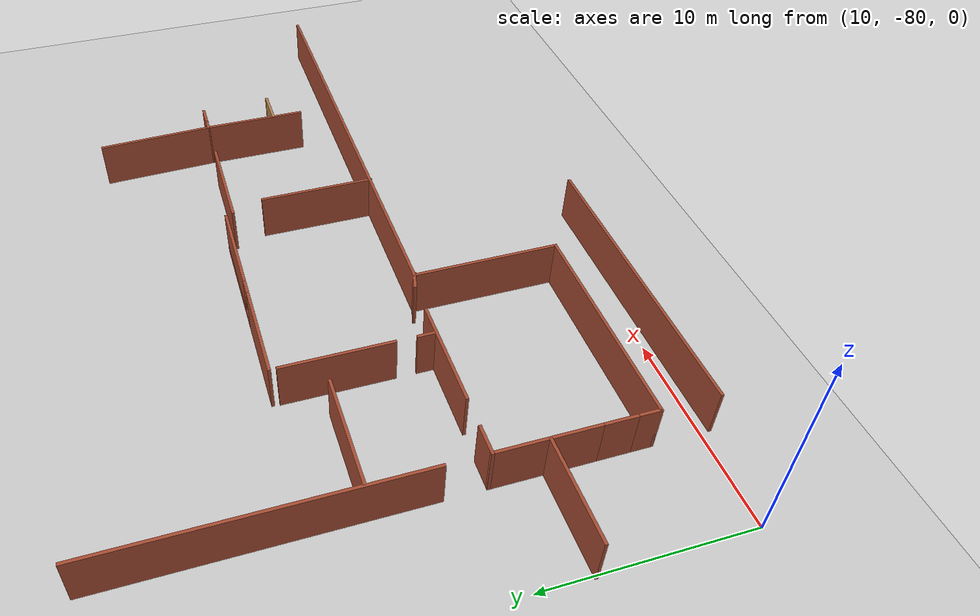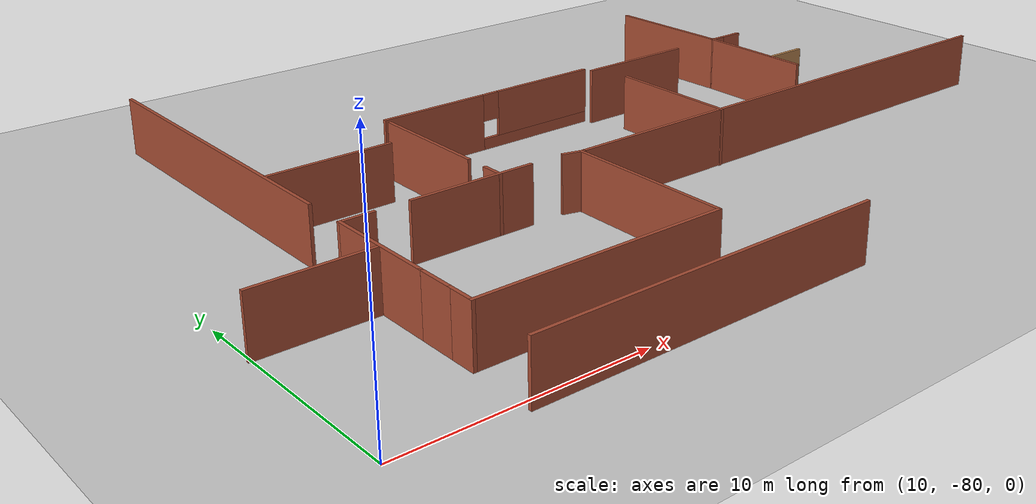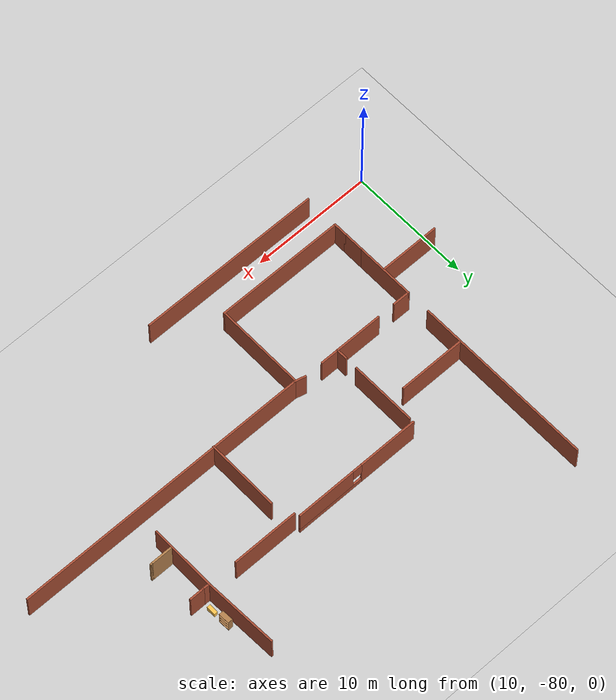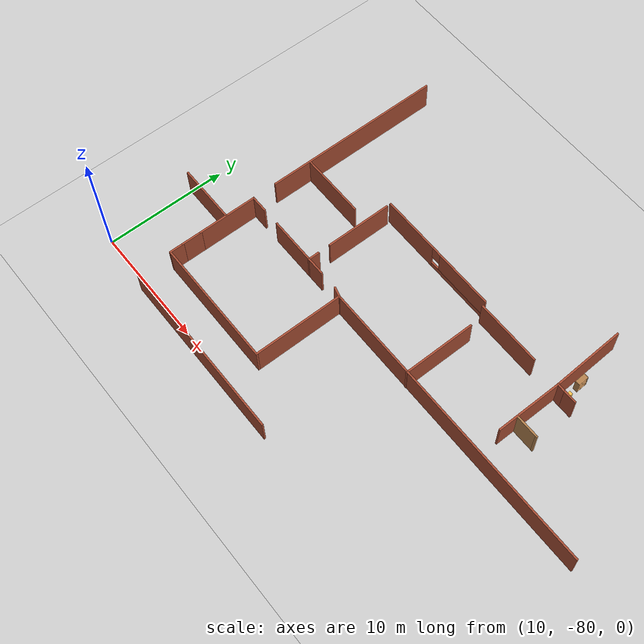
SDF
<sdf version="1.6">
 <world name="default">
  <model name="map_palace_v2_model_1_0">
   <pose>-3.1e-05 -55 0 0 -0 3.14</pose>
   <link name="Wall_10">
    <collision name="Wall_10_Collision">
     <geometry><box><size>7.5 0.15 2.5</size></box></geometry>
     <pose>0 0 1.25 0 -0 0</pose>
    </collision>
    <visual name="Wall_10_Visual">
     <pose>0 0 1.25 0 -0 0</pose>
     <geometry><box><size>7.5 0.15 2.5</size></box></geometry>
     <material>
      <script><uri>file://media/materials/scripts/gazebo.material</uri><name>Gazebo/Bricks</name></script>
      <ambient>1 1 1 1</ambient>
     </material>
     <meta><layer>0</layer></meta>
    </visual>
    <pose>-25.5193 18.9225 0 0 -0 -1.5708</pose>
   </link>
   <link name="Wall_11">
    <collision name="Wall_11_Collision">
     <geometry><box><size>24.75 0.15 2.5</size></box></geometry>
     <pose>0 0 1.25 0 -0 0</pose>
    </collision>
    <visual name="Wall_11_Visual">
     <pose>0 0 1.25 0 -0 0</pose>
     <geometry><box><size>24.75 0.15 2.5</size></box></geometry>
     <material>
      <script><uri>file://media/materials/scripts/gazebo.material</uri><name>Gazebo/Bricks</name></script>
      <ambient>1 1 1 1</ambient>
     </material>
     <meta><layer>0</layer></meta>
    </visual>
    <pose>-37.8193 15.2475 0 0 -0 3.14159</pose>
   </link>
   <link name="Wall_191">
    <collision name="Wall_191_Collision">
     <geometry><box><size>6.09813 0.15 2.5</size></box></geometry>
     <pose>0 0 1.25 0 -0 0</pose>
    </collision>
    <visual name="Wall_191_Visual">
     <pose>0 0 1.25 0 -0 0</pose>
     <geometry><box><size>6.09813 0.15 2.5</size></box></geometry>
     <material>
      <script><uri>file://media/materials/scripts/gazebo.material</uri><name>Gazebo/Bricks</name></script>
      <ambient>1 1 1 1</ambient>
     </material>
     <meta><layer>0</layer></meta>
    </visual>
    <pose>-40.2476 4.77589 0 0 -0 1.61175</pose>
   </link>
   <link name="Wall_196">
    <collision name="Wall_196_Collision">
     <geometry><box><size>5.5 0.15 2.5</size></box></geometry>
     <pose>0 0 1.25 0 -0 0</pose>
    </collision>
    <visual name="Wall_196_Visual">
     <pose>0 0 1.25 0 -0 0</pose>
     <geometry><box><size>5.5 0.15 2.5</size></box></geometry>
     <material>
      <script><uri>file://media/materials/scripts/gazebo.material</uri><name>Gazebo/Bricks</name></script>
      <ambient>1 1 1 1</ambient>
     </material>
     <meta><layer>0</layer></meta>
    </visual>
    <pose>-17.7024 9.73922 0 0 -0 0</pose>
   </link>
   <link name="Wall_200">
    <collision name="Wall_200_Collision">
     <geometry><box><size>5 0.15 2.5</size></box></geometry>
     <pose>0 0 1.25 0 -0 0</pose>
    </collision>
    <visual name="Wall_200_Visual">
     <pose>0 0 1.25 0 -0 0</pose>
     <geometry><box><size>5 0.15 2.5</size></box></geometry>
     <material>
      <script><uri>file://media/materials/scripts/gazebo.material</uri><name>Gazebo/Bricks</name></script>
      <ambient>1 1 1 1</ambient>
     </material>
     <meta><layer>0</layer></meta>
    </visual>
    <pose>-12.4131 17.5809 0 0 -0 0</pose>
   </link>
   <link name="Wall_22">
    <collision name="Wall_22_Collision">
     <geometry><box><size>15 0.15 2.5</size></box></geometry>
     <pose>0 0 1.25 0 -0 0</pose>
    </collision>
    <visual name="Wall_22_Visual">
     <pose>0 0 1.25 0 -0 0</pose>
     <geometry><box><size>15 0.15 2.5</size></box></geometry>
     <material>
      <script><uri>file://media/materials/scripts/gazebo.material</uri><name>Gazebo/Bricks</name></script>
      <ambient>1 1 1 1</ambient>
     </material>
     <meta><layer>0</layer></meta>
    </visual>
    <pose>-14.9193 5.57246 0 0 -0 1.5708</pose>
   </link>
   <link name="Wall_312">
    <pose>-27.0518 7.36745 0 0 -0 3.14159</pose>
    <visual name="Wall_312_Visual_0">
     <pose>-2.88797 0 1.25 0 -0 0</pose>
     <geometry><box><size>4.97407 0.15 2.5</size></box></geometry>
     <material>
      <script><uri>file://media/materials/scripts/gazebo.material</uri><name>Gazebo/Bricks</name></script>
      <ambient>1 1 1 1</ambient>
     </material>
     <meta><layer>0</layer></meta>
    </visual>
    <collision name="Wall_312_Collision_0">
     <geometry><box><size>4.97407 0.15 2.5</size></box></geometry>
     <pose>-2.88797 0 1.25 0 -0 0</pose>
    </collision>
    <visual name="Wall_312_Visual_1">
     <pose>2.48703 0 0.25 0 -0 0</pose>
     <geometry><box><size>5.77593 0.15 0.5</size></box></geometry>
     <material>
      <script><uri>file://media/materials/scripts/gazebo.material</uri><name>Gazebo/Bricks</name></script>
      <ambient>1 1 1 1</ambient>
     </material>
     <meta><layer>0</layer></meta>
    </visual>
    <collision name="Wall_312_Collision_1">
     <geometry><box><size>5.77593 0.15 0.5</size></box></geometry>
     <pose>2.48703 0 0.25 0 -0 0</pose>
    </collision>
    <visual name="Wall_312_Visual_2">
     <pose>2.88703 0 1.5 0 -0 0</pose>
     <geometry><box><size>4.97593 0.15 2</size></box></geometry>
     <material>
      <script><uri>file://media/materials/scripts/gazebo.material</uri><name>Gazebo/Bricks</name></script>
      <ambient>1 1 1 1</ambient>
     </material>
     <meta><layer>0</layer></meta>
    </visual>
    <collision name="Wall_312_Collision_2">
     <geometry><box><size>4.97593 0.15 2</size></box></geometry>
     <pose>2.88703 0 1.5 0 -0 0</pose>
    </collision>
    <visual name="Wall_312_Visual_3">
     <pose>-0.000933 0 1.9 0 -0 0</pose>
     <geometry><box><size>0.8 0.15 1.2</size></box></geometry>
     <material>
      <script><uri>file://media/materials/scripts/gazebo.material</uri><name>Gazebo/Bricks</name></script>
      <ambient>1 1 1 1</ambient>
     </material>
     <meta><layer>0</layer></meta>
    </visual>
    <collision name="Wall_312_Collision_3">
     <geometry><box><size>0.8 0.15 1.2</size></box></geometry>
     <pose>-0.000933 0 1.9 0 -0 0</pose>
    </collision>
   </link>
   <link name="Wall_44">
    <collision name="Wall_44_Collision">
     <geometry><box><size>15.25 0.15 2.5</size></box></geometry>
     <pose>0 0 1.25 0 -0 0</pose>
    </collision>
    <visual name="Wall_44_Visual">
     <pose>0 0 1.25 0 -0 0</pose>
     <geometry><box><size>15.25 0.15 2.5</size></box></geometry>
     <material>
      <script><uri>file://media/materials/scripts/gazebo.material</uri><name>Gazebo/Bricks</name></script>
      <ambient>1 1 1 1</ambient>
     </material>
     <meta><layer>0</layer></meta>
    </visual>
    <pose>-22.4693 25.4475 0 0 -0 3.14159</pose>
   </link>
   <link name="Wall_51">
    <collision name="Wall_51_Collision">
     <geometry><box><size>1.25 0.15 2.5</size></box></geometry>
     <pose>0 0 1.25 0 -0 0</pose>
    </collision>
    <visual name="Wall_51_Visual">
     <pose>0 0 1.25 0 -0 0</pose>
     <geometry><box><size>1.25 0.15 2.5</size></box></geometry>
     <material>
      <script><uri>file://media/materials/scripts/gazebo.material</uri><name>Gazebo/Bricks</name></script>
      <ambient>1 1 1 1</ambient>
     </material>
     <meta><layer>0</layer></meta>
    </visual>
    <pose>-14.9193 22.0475 0 0 -0 -1.5708</pose>
   </link>
   <link name="Wall_52">
    <collision name="Wall_52_Collision">
     <geometry><box><size>1.75 0.15 2.5</size></box></geometry>
     <pose>0 0 1.25 0 -0 0</pose>
    </collision>
    <visual name="Wall_52_Visual">
     <pose>0 0 1.25 0 -0 0</pose>
     <geometry><box><size>1.75 0.15 2.5</size></box></geometry>
     <material>
      <script><uri>file://media/materials/scripts/gazebo.material</uri><name>Gazebo/Bricks</name></script>
      <ambient>1 1 1 1</ambient>
     </material>
     <meta><layer>0</layer></meta>
    </visual>
    <pose>-14.9193 20.6975 0 0 -0 -1.5708</pose>
   </link>
   <link name="Wall_53">
    <collision name="Wall_53_Collision">
     <geometry><box><size>5 0.15 2.5</size></box></geometry>
     <pose>0 0 1.25 0 -0 0</pose>
    </collision>
    <visual name="Wall_53_Visual">
     <pose>0 0 1.25 0 -0 0</pose>
     <geometry><box><size>5 0.15 2.5</size></box></geometry>
     <material>
      <script><uri>file://media/materials/scripts/gazebo.material</uri><name>Gazebo/Bricks</name></script>
      <ambient>1 1 1 1</ambient>
     </material>
     <meta><layer>0</layer></meta>
    </visual>
    <pose>-14.9193 17.4725 0 0 -0 -1.5708</pose>
   </link>
   <link name="Wall_54">
    <collision name="Wall_54_Collision">
     <geometry><box><size>1.5 0.15 2.5</size></box></geometry>
     <pose>0 0 1.25 0 -0 0</pose>
    </collision>
    <visual name="Wall_54_Visual">
     <pose>0 0 1.25 0 -0 0</pose>
     <geometry><box><size>1.5 0.15 2.5</size></box></geometry>
     <material>
      <script><uri>file://media/materials/scripts/gazebo.material</uri><name>Gazebo/Bricks</name></script>
      <ambient>1 1 1 1</ambient>
     </material>
     <meta><layer>0</layer></meta>
    </visual>
    <pose>-15.5943 15.0475 0 0 -0 3.14159</pose>
   </link>
   <link name="Wall_58">
    <collision name="Wall_58_Collision">
     <geometry><box><size>5.5 0.15 2.5</size></box></geometry>
     <pose>0 0 1.25 0 -0 0</pose>
    </collision>
    <visual name="Wall_58_Visual">
     <pose>0 0 1.25 0 -0 0</pose>
     <geometry><box><size>5.5 0.15 2.5</size></box></geometry>
     <material>
      <script><uri>file://media/materials/scripts/gazebo.material</uri><name>Gazebo/Bricks</name></script>
      <ambient>1 1 1 1</ambient>
     </material>
     <meta><layer>0</layer></meta>
    </visual>
    <pose>-20.5061 15.044 0 0 -0 3.14159</pose>
   </link>
   <link name="Wall_60">
    <collision name="Wall_60_Collision">
     <geometry><box><size>1 0.15 2.5</size></box></geometry>
     <pose>0 0 1.25 0 -0 0</pose>
    </collision>
    <visual name="Wall_60_Visual">
     <pose>0 0 1.25 0 -0 0</pose>
     <geometry><box><size>1 0.15 2.5</size></box></geometry>
     <material>
      <script><uri>file://media/materials/scripts/gazebo.material</uri><name>Gazebo/Bricks</name></script>
      <ambient>1 1 1 1</ambient>
     </material>
     <meta><layer>0</layer></meta>
    </visual>
    <pose>-25.1916 15.154 0 0 -0 2.87979</pose>
   </link>
   <link name="Wall_66">
    <collision name="Wall_66_Collision">
     <geometry><box><size>5.5 0.15 2.5</size></box></geometry>
     <pose>0 0 1.25 0 -0 0</pose>
    </collision>
    <visual name="Wall_66_Visual">
     <pose>0 0 1.25 0 -0 0</pose>
     <geometry><box><size>5.5 0.15 2.5</size></box></geometry>
     <material>
      <script><uri>file://media/materials/scripts/gazebo.material</uri><name>Gazebo/Bricks</name></script>
      <ambient>1 1 1 1</ambient>
     </material>
     <meta><layer>0</layer></meta>
    </visual>
    <pose>-21.7193 10.4225 0 0 -0 1.5708</pose>
   </link>
   <link name="Wall_68">
    <collision name="Wall_68_Collision">
     <geometry><box><size>1 0.15 2.5</size></box></geometry>
     <pose>0 0 1.25 0 -0 0</pose>
    </collision>
    <visual name="Wall_68_Visual">
     <pose>0 0 1.25 0 -0 0</pose>
     <geometry><box><size>1 0.15 2.5</size></box></geometry>
     <material>
      <script><uri>file://media/materials/scripts/gazebo.material</uri><name>Gazebo/Bricks</name></script>
      <ambient>1 1 1 1</ambient>
     </material>
     <meta><layer>0</layer></meta>
    </visual>
    <pose>-21.7193 14.6225 0 0 -0 1.5708</pose>
   </link>
   <link name="Wall_70">
    <collision name="Wall_70_Collision">
     <geometry><box><size>6 0.15 2.5</size></box></geometry>
     <pose>0 0 1.25 0 -0 0</pose>
    </collision>
    <visual name="Wall_70_Visual">
     <pose>0 0 1.25 0 -0 0</pose>
     <geometry><box><size>6 0.15 2.5</size></box></geometry>
     <material>
      <script><uri>file://media/materials/scripts/gazebo.material</uri><name>Gazebo/Bricks</name></script>
      <ambient>1 1 1 1</ambient>
     </material>
     <meta><layer>0</layer></meta>
    </visual>
    <pose>-33.1638 12.3617 0 0 -0 -1.5708</pose>
   </link>
   <link name="Wall_76">
    <collision name="Wall_76_Collision">
     <geometry><box><size>5.5 0.15 2.5</size></box></geometry>
     <pose>0 0 1.25 0 -0 0</pose>
    </collision>
    <visual name="Wall_76_Visual">
     <pose>0 0 1.25 0 -0 0</pose>
     <geometry><box><size>5.5 0.15 2.5</size></box></geometry>
     <material>
      <script><uri>file://media/materials/scripts/gazebo.material</uri><name>Gazebo/Bricks</name></script>
      <ambient>1 1 1 1</ambient>
     </material>
     <meta><layer>0</layer></meta>
    </visual>
    <pose>-35.2443 7.74746 0 0 -0 3.14159</pose>
   </link>
   <link name="Wall_81">
    <collision name="Wall_81_Collision">
     <geometry><box><size>5.5 0.15 2.5</size></box></geometry>
     <pose>0 0 1.25 0 -0 0</pose>
    </collision>
    <visual name="Wall_81_Visual">
     <pose>0 0 1.25 0 -0 0</pose>
     <geometry><box><size>5.5 0.15 2.5</size></box></geometry>
     <material>
      <script><uri>file://media/materials/scripts/gazebo.material</uri><name>Gazebo/Bricks</name></script>
      <ambient>1 1 1 1</ambient>
     </material>
     <meta><layer>0</layer></meta>
    </visual>
    <pose>-40.3693 10.4225 0 0 -0 1.5708</pose>
   </link>
   <link name="Wall_85">
    <collision name="Wall_85_Collision">
     <geometry><box><size>0.740436 0.15 2.5</size></box></geometry>
     <pose>0 0 1.25 0 -0 0</pose>
    </collision>
    <visual name="Wall_85_Visual">
     <pose>0 0 1.25 0 -0 0</pose>
     <geometry><box><size>0.740436 0.15 2.5</size></box></geometry>
     <material>
      <script><uri>file://media/materials/scripts/gazebo.material</uri><name>Gazebo/Bricks</name></script>
      <ambient>1 1 1 1</ambient>
     </material>
     <meta><layer>0</layer></meta>
    </visual>
    <pose>-40.6644 7.75724 0 0 -0 3.10847</pose>
   </link>
   <link name="Wall_9">
    <collision name="Wall_9_Collision">
     <geometry><box><size>10.75 0.15 2.5</size></box></geometry>
     <pose>0 0 1.25 0 -0 0</pose>
    </collision>
    <visual name="Wall_9_Visual">
     <pose>0 0 1.25 0 -0 0</pose>
     <geometry><box><size>10.75 0.15 2.5</size></box></geometry>
     <material>
      <script><uri>file://media/materials/scripts/gazebo.material</uri><name>Gazebo/Bricks</name></script>
      <ambient>1 1 1 1</ambient>
     </material>
     <meta><layer>0</layer></meta>
    </visual>
    <pose>-20.2193 22.5975 0 0 -0 3.14159</pose>
   </link>
   <link name="Wall_92">
    <collision name="Wall_92_Collision">
     <geometry><box><size>1.25 0.15 2.5</size></box></geometry>
     <pose>0 0 1.25 0 -0 0</pose>
    </collision>
    <visual name="Wall_92_Visual">
     <pose>0 0 1.25 0 -0 0</pose>
     <geometry><box><size>1.25 0.15 2.5</size></box></geometry>
     <material>
      <script><uri>file://media/materials/scripts/gazebo.material</uri><name>Gazebo/Bricks</name></script>
      <ambient>1 1 1 1</ambient>
     </material>
     <meta><layer>0</layer></meta>
    </visual>
    <pose>-41.4995 7.75713 0 0 -0 3.14159</pose>
   </link>
   <static>1</static>
  </model>
  <model name="bookshelf_clone_1_clone_1_clone">
   <static>1</static>
   <link name="link">
    <inertial><mass>1</mass></inertial>
    <collision name="back">
     <pose>0 0.005 0.6 0 -0 0</pose>
     <geometry><box><size>0.9 0.01 1.2</size></box></geometry>
    </collision>
    <visual name="visual1">
     <pose>0 0.005 0.6 0 -0 0</pose>
     <geometry><box><size>0.9 0.01 1.2</size></box></geometry>
     <material>
      <script><uri>file://media/materials/scripts/gazebo.material</uri><name>Gazebo/Wood</name></script>
     </material>
    </visual>
    <collision name="left_side">
     <pose>0.45 -0.195 0.6 0 -0 0</pose>
     <geometry><box><size>0.02 0.4 1.2</size></box></geometry>
    </collision>
    <visual name="visual2">
     <pose>0.45 -0.195 0.6 0 -0 0</pose>
     <geometry><box><size>0.02 0.4 1.2</size></box></geometry>
     <material>
      <script><uri>file://media/materials/scripts/gazebo.material</uri><name>Gazebo/Wood</name></script>
     </material>
    </visual>
    <collision name="right_side">
     <pose>-0.45 -0.195 0.6 0 -0 0</pose>
     <geometry><box><size>0.02 0.4 1.2</size></box></geometry>
    </collision>
    <visual name="visual3">
     <pose>-0.45 -0.195 0.6 0 -0 0</pose>
     <geometry><box><size>0.02 0.4 1.2</size></box></geometry>
     <material>
      <script><uri>file://media/materials/scripts/gazebo.material</uri><name>Gazebo/Wood</name></script>
     </material>
    </visual>
    <collision name="bottom">
     <pose>0 -0.195 0.03 0 -0 0</pose>
     <geometry><box><size>0.88 0.4 0.06</size></box></geometry>
    </collision>
    <visual name="visual4">
     <pose>0 -0.195 0.03 0 -0 0</pose>
     <geometry><box><size>0.88 0.4 0.06</size></box></geometry>
     <material>
      <script><uri>file://media/materials/scripts/gazebo.material</uri><name>Gazebo/Wood</name></script>
     </material>
    </visual>
    <collision name="top">
     <pose>0 -0.195 1.19 0 -0 0</pose>
     <geometry><box><size>0.88 0.4 0.02</size></box></geometry>
    </collision>
    <visual name="visual5">
     <pose>0 -0.195 1.19 0 -0 0</pose>
     <geometry><box><size>0.88 0.4 0.02</size></box></geometry>
     <material>
      <script><uri>file://media/materials/scripts/gazebo.material</uri><name>Gazebo/Wood</name></script>
     </material>
    </visual>
    <collision name="low_shelf">
     <pose>0 -0.195 0.43 0 -0 0</pose>
     <geometry><box><size>0.88 0.4 0.02</size></box></geometry>
    </collision>
    <visual name="visual6">
     <pose>0 -0.195 0.43 0 -0 0</pose>
     <geometry><box><size>0.88 0.4 0.02</size></box></geometry>
     <material>
      <script><uri>file://media/materials/scripts/gazebo.material</uri><name>Gazebo/Wood</name></script>
     </material>
    </visual>
    <collision name="high_shelf">
     <pose>0 -0.195 0.8 0 -0 0</pose>
     <geometry><box><size>0.88 0.4 0.02</size></box></geometry>
    </collision>
    <visual name="visual7">
     <pose>0 -0.195 0.8 0 -0 0</pose>
     <geometry><box><size>0.88 0.4 0.02</size></box></geometry>
     <material>
      <script><uri>file://media/materials/scripts/gazebo.material</uri><name>Gazebo/Wood</name></script>
     </material>
    </visual>
   </link>
   <pose>40.614 -60.7059 0 0 -0 1.61733</pose>
  </model>
  <model name="wall_8">
   <pose>41.3334 -66.5977 0 0 -0 0</pose>
   <link name="Wall_2">
    <collision name="Wall_2_Collision">
     <geometry><box><size>2 0.15 2.5</size></box></geometry>
     <pose>0 0 1.25 0 -0 0</pose>
    </collision>
    <visual name="Wall_2_Visual">
     <pose>0 0 1.25 0 -0 0</pose>
     <geometry><box><size>2 0.15 2.5</size></box></geometry>
     <material>
      <script><uri>file://media/materials/scripts/gazebo.material</uri><name>Gazebo/Wood</name></script>
      <ambient>1 1 1 1</ambient>
     </material>
     <meta><layer>0</layer></meta>
    </visual>
    <pose>-0.005 -0 0 0 -0 0</pose>
   </link>
   <link name="Wall_3">
    <collision name="Wall_3_Collision">
     <geometry><box><size>0.16 0.15 2.5</size></box></geometry>
     <pose>0 0 1.25 0 -0 0</pose>
    </collision>
    <visual name="Wall_3_Visual">
     <pose>0 0 1.25 0 -0 0</pose>
     <geometry><box><size>0.16 0.15 2.5</size></box></geometry>
     <material>
      <script><uri>file://media/materials/scripts/gazebo.material</uri><name>Gazebo/Wood</name></script>
      <ambient>1 1 1 1</ambient>
     </material>
     <meta><layer>0</layer></meta>
    </visual>
    <pose>0.925 0 0 0 -0 0</pose>
   </link>
   <static>1</static>
  </model>
  <model name="Box_15x30_11">
   <link name="Wall">
    <pose>0 0 0.1985 0 -0 0</pose>
    <inertial>
     <mass>5</mass>
     <inertia><ixx>0.3089</ixx><iyy>0.1022</iyy><izz>0.2797</izz><ixy>0</ixy><ixz>0</ixz><iyz>0</iyz></inertia>
    </inertial>
    <collision name="Wall_Collision"><geometry><box><size>0.296 0.764 0.397</size></box></geometry></collision>
    <visual name="Wall_Visual">
     <geometry><box><size>0.296 0.764 0.397</size></box></geometry>
     <material>
      <script><uri>file://media/materials/scripts/gazebo.material</uri><name>Gazebo/Grey</name></script>
      <ambient>1 0.764706 0.305882 1</ambient>
     </material>
    </visual>
   </link>
   <static>1</static>
   <pose>40.8828 -62.0061 0 0 -0 0</pose>
  </model>
  <model name="ground_plane">
   <static>1</static>
   <link name="link">
    <collision name="collision">
     <geometry><plane><normal>0 0 1</normal><size>100 100</size></plane></geometry>
     <surface>
      <contact><collide_bitmask>65535</collide_bitmask></contact>
      <friction><ode><mu>100</mu><mu2>50</mu2></ode></friction>
     </surface>
    </collision>
    <visual name="visual">
     <cast_shadows>0</cast_shadows>
     <geometry><plane><normal>0 0 1</normal><size>100 100</size></plane></geometry>
     <material>
      <script><uri>file://media/materials/scripts/gazebo.material</uri><name>Gazebo/Grey</name></script>
     </material>
    </visual>
   </link>
   <pose>9.31394 52.073 0 0 -0 0</pose>
  </model>
 </world>
</sdf>
